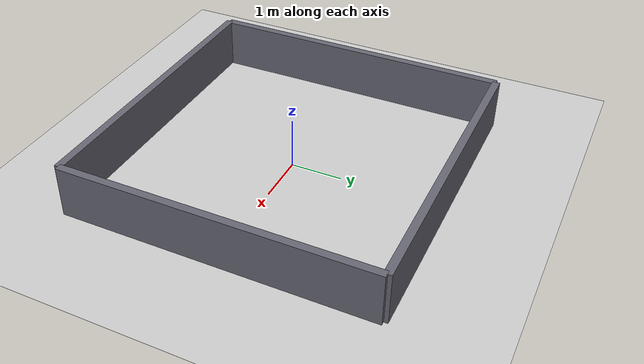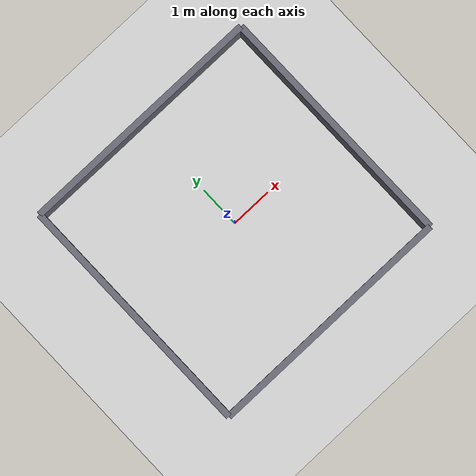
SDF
<?xml version="1.0"?>
<sdf version="1.8">
  <world name="maze04_world">
    <physics type="ode">
      <real_time_update_rate>1000.0</real_time_update_rate>
      <max_step_size>0.001</max_step_size>
      <real_time_factor>1</real_time_factor>
      <ode>
        <solver>
          <type>quick</type>
          <iters>150</iters>
          <precon_iters>0</precon_iters>
          <sor>1.400000</sor>
          <use_dynamic_moi_rescaling>1</use_dynamic_moi_rescaling>
        </solver>
        <constraints>
          <cfm>0.00001</cfm>
          <erp>0.2</erp>
          <contact_max_correcting_vel>2000.000000</contact_max_correcting_vel>
          <contact_surface_layer>0.01000</contact_surface_layer>
        </constraints>
      </ode>
    </physics>
    <plugin
      filename="gz-sim-physics-system"
      name="gz::sim::systems::Physics">
    </plugin>
    <plugin
      filename="gz-sim-user-commands-system"
      name="gz::sim::systems::UserCommands">
    </plugin>
    <plugin
      filename="gz-sim-scene-broadcaster-system"
      name="gz::sim::systems::SceneBroadcaster">
    </plugin>
    <plugin
      filename="gz-sim-sensors-system"
      name="gz::sim::systems::Sensors">
      <render_engine>ogre2</render_engine>
    </plugin>
    <plugin
      filename="gz-sim-imu-system"
      name="gz::sim::systems::Imu">
    </plugin>

    <include>
      <uri>https://fuel.gazebosim.org/1.0/OpenRobotics/models/Ground Plane</uri>
    </include>

    <include>
      <uri>https://fuel.gazebosim.org/1.0/OpenRobotics/models/Sun</uri>
    </include>

    <!-- ===== MAZE 04: 6m x 6m RECTANGULAR BOUNDARY ===== -->
    <!-- Arena: width=6 (x from -3..3), height=6 (y from -3..3) -->
    <!-- Walls: thickness=0.15, height=1.0 (z) -->

    <!-- ===== OUTER BOUNDARY ===== -->
    <!-- Top wall -->
    <model name="outer_top" static="true">
      <pose>0 3 0.5 0 0 0</pose>
      <link name="link">
        <inertial>
          <mass>1000</mass>
          <inertia>
            <ixx>1000</ixx>
            <iyy>1000</iyy>
            <izz>1000</izz>
            <ixy>0</ixy>
            <ixz>0</ixz>
            <iyz>0</iyz>
          </inertia>
        </inertial>
        <collision name="col"><geometry><box><size>6 0.15 1.0</size></box></geometry></collision>
        <visual name="vis"><geometry><box><size>6 0.15 1.0</size></box></geometry>
          <material><ambient>0.4 0.4 0.45 1</ambient></material></visual>
      </link>
    </model>

    <!-- Bottom wall -->
    <model name="outer_bottom" static="true">
      <pose>0 -3 0.5 0 0 0</pose>
      <link name="link">
        <inertial>
          <mass>1000</mass>
          <inertia>
            <ixx>1000</ixx>
            <iyy>1000</iyy>
            <izz>1000</izz>
            <ixy>0</ixy>
            <ixz>0</ixz>
            <iyz>0</iyz>
          </inertia>
        </inertial>
        <collision name="col"><geometry><box><size>6 0.15 1.0</size></box></geometry></collision>
        <visual name="vis"><geometry><box><size>6 0.15 1.0</size></box></geometry>
          <material><ambient>0.4 0.4 0.45 1</ambient></material></visual>
      </link>
    </model>

    <!-- Left wall -->
    <model name="outer_left" static="true">
      <pose>-3 0 0.5 0 0 0</pose>
      <link name="link">
        <inertial>
          <mass>1000</mass>
          <inertia>
            <ixx>1000</ixx>
            <iyy>1000</iyy>
            <izz>1000</izz>
            <ixy>0</ixy>
            <ixz>0</ixz>
            <iyz>0</iyz>
          </inertia>
        </inertial>
        <collision name="col"><geometry><box><size>0.15 6 1.0</size></box></geometry></collision>
        <visual name="vis"><geometry><box><size>0.15 6 1.0</size></box></geometry>
          <material><ambient>0.4 0.4 0.45 1</ambient></material></visual>
      </link>
    </model>

    <!-- Right wall -->
    <model name="outer_right" static="true">
      <pose>3 0 0.5 0 0 0</pose>
      <link name="link">
        <inertial>
          <mass>1000</mass>
          <inertia>
            <ixx>1000</ixx>
            <iyy>1000</iyy>
            <izz>1000</izz>
            <ixy>0</ixy>
            <ixz>0</ixz>
            <iyz>0</iyz>
          </inertia>
        </inertial>
        <collision name="col"><geometry><box><size>0.15 6 1.0</size></box></geometry></collision>
        <visual name="vis"><geometry><box><size>0.15 6 1.0</size></box></geometry>
          <material><ambient>0.4 0.4 0.45 1</ambient></material></visual>
      </link>
    </model>

    <gui fullscreen='0'>
      <camera name='user_camera'>
        <pose frame=''>0 0 10 0 1.57 0</pose>
        <view_controller>orbit</view_controller>
        <projection_type>perspective</projection_type>
      </camera>
    </gui>
  </world>
</sdf>
